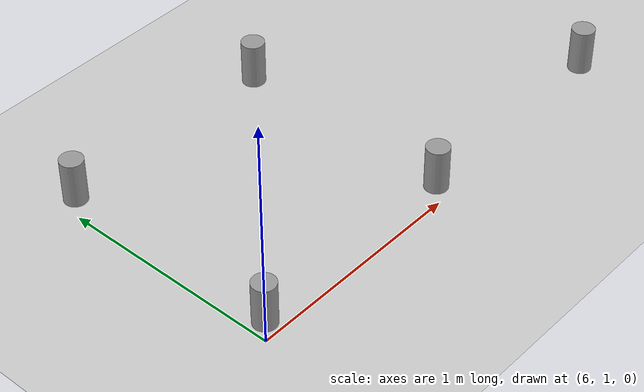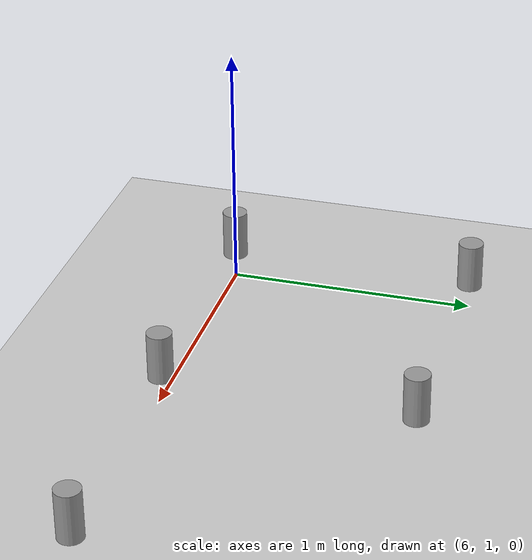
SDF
<sdf version="1.6">
 <world name="default">
  <model name="ground_plane">
   <static>1</static>
   <link name="link">
    <collision name="collision">
     <geometry><plane><normal>0 0 1</normal><size>100 100</size></plane></geometry>
     <surface><friction><ode><mu>100</mu><mu2>50</mu2></ode></friction></surface>
    </collision>
    <visual name="visual">
     <cast_shadows>0</cast_shadows>
     <geometry><plane><normal>0 0 1</normal><size>100 100</size></plane></geometry>
     <material>
      <script><uri>file://media/materials/scripts/gazebo.material</uri><name>Gazebo/Grey</name></script>
     </material>
    </visual>
   </link>
  </model>
  <model name="agent6">
   <link name="link_0">
    <inertial>
     <mass>1</mass>
     <inertia><ixx>0</ixx><ixy>0</ixy><ixz>0</ixz><iyy>0</iyy><iyz>0</iyz><izz>0</izz></inertia>
    </inertial>
    <visual name="visual">
     <geometry><cylinder><radius>0.05</radius><length>0.2</length></cylinder></geometry>
     <material>
      <lighting>1</lighting>
      <script><uri>file://media/materials/scripts/gazebo.material</uri><name>Gazebo/Grey</name></script>
     </material>
    </visual>
    <collision name="collision">
     <geometry><cylinder><radius>0.05</radius><length>0.2</length></cylinder></geometry>
     <surface>
      <friction>
       <ode><mu>0</mu><mu2>1</mu2><fdir1>0 0 0</fdir1><slip1>0</slip1><slip2>0</slip2></ode>
       <torsional>
        <coefficient>1</coefficient>
        <patch_radius>0</patch_radius>
        <surface_radius>0</surface_radius>
        <use_patch_radius>1</use_patch_radius>
        <ode><slip>0</slip></ode>
       </torsional>
      </friction>
      <bounce><restitution_coefficient>0</restitution_coefficient><threshold>1e+06</threshold></bounce>
      <contact>
       <collide_without_contact>0</collide_without_contact>
       <collide_without_contact_bitmask>1</collide_without_contact_bitmask>
       <collide_bitmask>1</collide_bitmask>
       <ode>
        <soft_cfm>0</soft_cfm>
        <soft_erp>0.2</soft_erp>
        <kp>1e+13</kp>
        <kd>1</kd>
        <max_vel>0.01</max_vel>
        <min_depth>0</min_depth>
       </ode>
       <bullet>
        <split_impulse>1</split_impulse>
        <split_impulse_penetration_threshold>-0.01</split_impulse_penetration_threshold>
        <soft_cfm>0</soft_cfm>
        <soft_erp>0.2</soft_erp>
        <kp>1e+13</kp>
        <kd>1</kd>
       </bullet>
      </contact>
     </surface>
    </collision>
   </link>
   <static>0</static>
   <plugin name="multi_obs" filename="libmulti_obs.so"/>
   <pose>6 1 0.19999 -0 -0 -0</pose>
  </model>
  <model name="agent7">
   <link name="link_0">
    <inertial>
     <mass>1</mass>
     <inertia><ixx>0</ixx><ixy>0</ixy><ixz>0</ixz><iyy>0</iyy><iyz>0</iyz><izz>0</izz></inertia>
    </inertial>
    <visual name="visual">
     <geometry><cylinder><radius>0.05</radius><length>0.2</length></cylinder></geometry>
     <material>
      <lighting>1</lighting>
      <script><uri>file://media/materials/scripts/gazebo.material</uri><name>Gazebo/Grey</name></script>
     </material>
    </visual>
    <collision name="collision">
     <geometry><cylinder><radius>0.05</radius><length>0.2</length></cylinder></geometry>
     <surface>
      <friction>
       <ode><mu>0</mu><mu2>1</mu2><fdir1>0 0 0</fdir1><slip1>0</slip1><slip2>0</slip2></ode>
       <torsional>
        <coefficient>1</coefficient>
        <patch_radius>0</patch_radius>
        <surface_radius>0</surface_radius>
        <use_patch_radius>1</use_patch_radius>
        <ode><slip>0</slip></ode>
       </torsional>
      </friction>
      <bounce><restitution_coefficient>0</restitution_coefficient><threshold>1e+06</threshold></bounce>
      <contact>
       <collide_without_contact>0</collide_without_contact>
       <collide_without_contact_bitmask>1</collide_without_contact_bitmask>
       <collide_bitmask>1</collide_bitmask>
       <ode>
        <soft_cfm>0</soft_cfm>
        <soft_erp>0.2</soft_erp>
        <kp>1e+13</kp>
        <kd>1</kd>
        <max_vel>0.01</max_vel>
        <min_depth>0</min_depth>
       </ode>
       <bullet>
        <split_impulse>1</split_impulse>
        <split_impulse_penetration_threshold>-0.01</split_impulse_penetration_threshold>
        <soft_cfm>0</soft_cfm>
        <soft_erp>0.2</soft_erp>
        <kp>1e+13</kp>
        <kd>1</kd>
       </bullet>
      </contact>
     </surface>
    </collision>
   </link>
   <static>0</static>
   <plugin name="multi_obs" filename="libmulti_obs.so"/>
   <pose>6.97929 1.00485 0.19999 0 -0 0</pose>
  </model>
  <model name="agent8">
   <link name="link_0">
    <inertial>
     <mass>1</mass>
     <inertia><ixx>0</ixx><ixy>0</ixy><ixz>0</ixz><iyy>0</iyy><iyz>0</iyz><izz>0</izz></inertia>
    </inertial>
    <visual name="visual">
     <geometry><cylinder><radius>0.05</radius><length>0.2</length></cylinder></geometry>
     <material>
      <lighting>1</lighting>
      <script><uri>file://media/materials/scripts/gazebo.material</uri><name>Gazebo/Grey</name></script>
     </material>
    </visual>
    <collision name="collision">
     <geometry><cylinder><radius>0.05</radius><length>0.2</length></cylinder></geometry>
     <surface>
      <friction>
       <ode><mu>0</mu><mu2>1</mu2><fdir1>0 0 0</fdir1><slip1>0</slip1><slip2>0</slip2></ode>
       <torsional>
        <coefficient>1</coefficient>
        <patch_radius>0</patch_radius>
        <surface_radius>0</surface_radius>
        <use_patch_radius>1</use_patch_radius>
        <ode><slip>0</slip></ode>
       </torsional>
      </friction>
      <bounce><restitution_coefficient>0</restitution_coefficient><threshold>1e+06</threshold></bounce>
      <contact>
       <collide_without_contact>0</collide_without_contact>
       <collide_without_contact_bitmask>1</collide_without_contact_bitmask>
       <collide_bitmask>1</collide_bitmask>
       <ode>
        <soft_cfm>0</soft_cfm>
        <soft_erp>0.2</soft_erp>
        <kp>1e+13</kp>
        <kd>1</kd>
        <max_vel>0.01</max_vel>
        <min_depth>0</min_depth>
       </ode>
       <bullet>
        <split_impulse>1</split_impulse>
        <split_impulse_penetration_threshold>-0.01</split_impulse_penetration_threshold>
        <soft_cfm>0</soft_cfm>
        <soft_erp>0.2</soft_erp>
        <kp>1e+13</kp>
        <kd>1</kd>
       </bullet>
      </contact>
     </surface>
    </collision>
   </link>
   <static>0</static>
   <plugin name="multi_obs" filename="libmulti_obs.so"/>
   <pose>7.98009 1.03053 0.19999 0 -0 0</pose>
  </model>
  <model name="agent16">
   <link name="link_0">
    <inertial>
     <mass>1</mass>
     <inertia><ixx>0</ixx><ixy>0</ixy><ixz>0</ixz><iyy>0</iyy><iyz>0</iyz><izz>0</izz></inertia>
    </inertial>
    <visual name="visual">
     <geometry><cylinder><radius>0.05</radius><length>0.2</length></cylinder></geometry>
     <material>
      <lighting>1</lighting>
      <script><uri>file://media/materials/scripts/gazebo.material</uri><name>Gazebo/Grey</name></script>
     </material>
    </visual>
    <collision name="collision">
     <geometry><cylinder><radius>0.05</radius><length>0.2</length></cylinder></geometry>
     <surface>
      <friction>
       <ode><mu>0</mu><mu2>1</mu2><fdir1>0 0 0</fdir1><slip1>0</slip1><slip2>0</slip2></ode>
       <torsional>
        <coefficient>1</coefficient>
        <patch_radius>0</patch_radius>
        <surface_radius>0</surface_radius>
        <use_patch_radius>1</use_patch_radius>
        <ode><slip>0</slip></ode>
       </torsional>
      </friction>
      <bounce><restitution_coefficient>0</restitution_coefficient><threshold>1e+06</threshold></bounce>
      <contact>
       <collide_without_contact>0</collide_without_contact>
       <collide_without_contact_bitmask>1</collide_without_contact_bitmask>
       <collide_bitmask>1</collide_bitmask>
       <ode>
        <soft_cfm>0</soft_cfm>
        <soft_erp>0.2</soft_erp>
        <kp>1e+13</kp>
        <kd>1</kd>
        <max_vel>0.01</max_vel>
        <min_depth>0</min_depth>
       </ode>
       <bullet>
        <split_impulse>1</split_impulse>
        <split_impulse_penetration_threshold>-0.01</split_impulse_penetration_threshold>
        <soft_cfm>0</soft_cfm>
        <soft_erp>0.2</soft_erp>
        <kp>1e+13</kp>
        <kd>1</kd>
       </bullet>
      </contact>
     </surface>
    </collision>
   </link>
   <static>0</static>
   <plugin name="multi_obs" filename="libmulti_obs.so"/>
   <pose>6 2 0.19999 0 -0 0</pose>
  </model>
  <model name="agent17">
   <link name="link_0">
    <inertial>
     <mass>1</mass>
     <inertia><ixx>0</ixx><ixy>0</ixy><ixz>0</ixz><iyy>0</iyy><iyz>0</iyz><izz>0</izz></inertia>
    </inertial>
    <visual name="visual">
     <geometry><cylinder><radius>0.05</radius><length>0.2</length></cylinder></geometry>
     <material>
      <lighting>1</lighting>
      <script><uri>file://media/materials/scripts/gazebo.material</uri><name>Gazebo/Grey</name></script>
     </material>
    </visual>
    <collision name="collision">
     <geometry><cylinder><radius>0.05</radius><length>0.2</length></cylinder></geometry>
     <surface>
      <friction>
       <ode><mu>0</mu><mu2>1</mu2><fdir1>0 0 0</fdir1><slip1>0</slip1><slip2>0</slip2></ode>
       <torsional>
        <coefficient>1</coefficient>
        <patch_radius>0</patch_radius>
        <surface_radius>0</surface_radius>
        <use_patch_radius>1</use_patch_radius>
        <ode><slip>0</slip></ode>
       </torsional>
      </friction>
      <bounce><restitution_coefficient>0</restitution_coefficient><threshold>1e+06</threshold></bounce>
      <contact>
       <collide_without_contact>0</collide_without_contact>
       <collide_without_contact_bitmask>1</collide_without_contact_bitmask>
       <collide_bitmask>1</collide_bitmask>
       <ode>
        <soft_cfm>0</soft_cfm>
        <soft_erp>0.2</soft_erp>
        <kp>1e+13</kp>
        <kd>1</kd>
        <max_vel>0.01</max_vel>
        <min_depth>0</min_depth>
       </ode>
       <bullet>
        <split_impulse>1</split_impulse>
        <split_impulse_penetration_threshold>-0.01</split_impulse_penetration_threshold>
        <soft_cfm>0</soft_cfm>
        <soft_erp>0.2</soft_erp>
        <kp>1e+13</kp>
        <kd>1</kd>
       </bullet>
      </contact>
     </surface>
    </collision>
   </link>
   <static>0</static>
   <plugin name="multi_obs" filename="libmulti_obs.so"/>
   <pose>7 2 0.19999 0 -0 0</pose>
  </model>
 </world>
</sdf>
